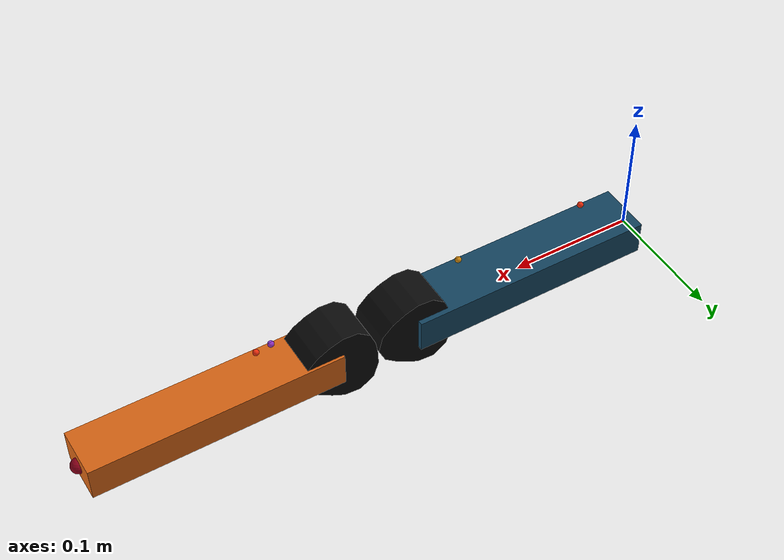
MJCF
<mujoco model="cable_demo_surface_route_convex_mesh_rolling_joint">
  <compiler autolimits="true" angle="radian" alignfree="false" />
  <size nuser_site="1" />
  <option timestep="0.001" gravity="0 0 0" integrator="implicit" />

  <extension>
    <plugin plugin="mujoco.cable.unilateral">
      <instance name="mesh_upper_drive_cable">
        <config key="stiffness" value="1200" />
        <config key="damping" value="18" />
        <config key="slack" value="0.0002" />
        <config key="home_length" value="auto_initial" />
        <config key="pretension_offset" value="0.0012" />
        <config key="max_tension" value="100" />
        <config key="ctrl_mode" value="target_contraction" />
        <config key="route_mode" value="surface" />
        <config key="route_tendon" value="mesh_upper_drive_seed" />
        <config key="wrap_geoms" value="proximal_mesh_proxy distal_mesh_proxy" />
      </instance>
      <instance name="mesh_lower_drive_cable">
        <config key="stiffness" value="1200" />
        <config key="damping" value="18" />
        <config key="slack" value="0.0002" />
        <config key="home_length" value="auto_initial" />
        <config key="pretension_offset" value="0.0012" />
        <config key="max_tension" value="100" />
        <config key="ctrl_mode" value="target_contraction" />
        <config key="route_mode" value="surface" />
        <config key="route_tendon" value="mesh_lower_drive_seed" />
        <config key="wrap_geoms" value="proximal_mesh_proxy distal_mesh_proxy" />
      </instance>
      <instance name="mesh_upper_strap_cable">
        <config key="stiffness" value="18000" />
        <config key="damping" value="500" />
        <config key="home_length" value="auto_initial" />
        <config key="pretension_offset" value="0.00010" />
        <config key="max_tension" value="80" />
        <config key="route_mode" value="surface" />
        <config key="route_tendon" value="mesh_upper_strap_seed" />
        <config key="wrap_geoms" value="proximal_mesh_proxy distal_mesh_proxy" />
      </instance>
      <instance name="mesh_lower_strap_cable">
        <config key="stiffness" value="18000" />
        <config key="damping" value="500" />
        <config key="home_length" value="auto_initial" />
        <config key="pretension_offset" value="0.00010" />
        <config key="max_tension" value="80" />
        <config key="route_mode" value="surface" />
        <config key="route_tendon" value="mesh_lower_strap_seed" />
        <config key="wrap_geoms" value="proximal_mesh_proxy distal_mesh_proxy" />
      </instance>
    </plugin>
  </extension>

  <asset>
    <material name="mesh_proximal_material" rgba="0.08 0.27 0.38 1" />
    <material name="mesh_distal_material" rgba="0.84 0.39 0.08 1" />
    <material name="mesh_contact_material" rgba="0.04 0.04 0.04 1" />
    <mesh name="irregular_proxy_mesh"
          vertex="0.0327000 -0.2000000 0.0000000 0.0209239 -0.2000000 0.0209239 0.0000000 -0.2000000 0.0300000 -0.0215025 -0.2000000 0.0215025 -0.0273000 -0.2000000 0.0000000 -0.0236239 -0.2000000 -0.0236239 -0.0000000 -0.2000000 -0.0300000 0.0188025 -0.2000000 -0.0188025 0.0327000 -0.0050000 0.0000000 0.0209239 -0.0050000 0.0209239 0.0000000 -0.0050000 0.0300000 -0.0215025 -0.0050000 0.0215025 -0.0273000 -0.0050000 0.0000000 -0.0236239 -0.0050000 -0.0236239 -0.0000000 -0.0050000 -0.0300000 0.0188025 -0.0050000 -0.0188025 0.0327000 0.0050000 0.0000000 0.0209239 0.0050000 0.0209239 0.0000000 0.0050000 0.0300000 -0.0215025 0.0050000 0.0215025 -0.0273000 0.0050000 0.0000000 -0.0236239 0.0050000 -0.0236239 -0.0000000 0.0050000 -0.0300000 0.0188025 0.0050000 -0.0188025 0.0327000 0.2000000 0.0000000 0.0209239 0.2000000 0.0209239 0.0000000 0.2000000 0.0300000 -0.0215025 0.2000000 0.0215025 -0.0273000 0.2000000 0.0000000 -0.0236239 0.2000000 -0.0236239 -0.0000000 0.2000000 -0.0300000 0.0188025 0.2000000 -0.0188025"
          face="0 2 1 24 25 26 0 3 2 24 26 27 0 4 3 24 27 28 0 5 4 24 28 29 0 6 5 24 29 30 0 7 6 24 30 31 0 1 9 0 9 8 1 2 10 1 10 9 2 3 11 2 11 10 3 4 12 3 12 11 4 5 13 4 13 12 5 6 14 5 14 13 6 7 15 6 15 14 7 0 8 7 8 15 8 9 17 8 17 16 9 10 18 9 18 17 10 11 19 10 19 18 11 12 20 11 20 19 12 13 21 12 21 20 13 14 22 13 22 21 14 15 23 14 23 22 15 8 16 15 16 23 16 17 25 16 25 24 17 18 26 17 26 25 18 19 27 18 27 26 19 20 28 19 28 27 20 21 29 20 29 28 21 22 30 21 30 29 22 23 31 22 31 30 23 16 24 23 24 31" />
    <mesh name="irregular_visual_mesh"
          vertex="0.0337900 -0.0180000 0.0000000 0.0306393 -0.0180000 0.0126912 0.0216213 -0.0180000 0.0216213 0.0112962 -0.0180000 0.0272714 0.0000000 -0.0180000 0.0310000 -0.0124302 -0.0180000 0.0300091 -0.0222193 -0.0180000 0.0222193 -0.0266413 -0.0180000 0.0110352 -0.0282100 -0.0180000 0.0000000 -0.0286664 -0.0180000 -0.0118740 -0.0244113 -0.0180000 -0.0244113 -0.0132690 -0.0180000 -0.0320343 -0.0000000 -0.0180000 -0.0310000 0.0104573 -0.0180000 -0.0252463 0.0194293 -0.0180000 -0.0194293 0.0286141 -0.0180000 -0.0118523 0.0337900 0.0180000 0.0000000 0.0306393 0.0180000 0.0126912 0.0216213 0.0180000 0.0216213 0.0112962 0.0180000 0.0272714 0.0000000 0.0180000 0.0310000 -0.0124302 0.0180000 0.0300091 -0.0222193 0.0180000 0.0222193 -0.0266413 0.0180000 0.0110352 -0.0282100 0.0180000 0.0000000 -0.0286664 0.0180000 -0.0118740 -0.0244113 0.0180000 -0.0244113 -0.0132690 0.0180000 -0.0320343 -0.0000000 0.0180000 -0.0310000 0.0104573 0.0180000 -0.0252463 0.0194293 0.0180000 -0.0194293 0.0286141 0.0180000 -0.0118523"
          face="0 2 1 16 17 18 0 3 2 16 18 19 0 4 3 16 19 20 0 5 4 16 20 21 0 6 5 16 21 22 0 7 6 16 22 23 0 8 7 16 23 24 0 9 8 16 24 25 0 10 9 16 25 26 0 11 10 16 26 27 0 12 11 16 27 28 0 13 12 16 28 29 0 14 13 16 29 30 0 15 14 16 30 31 0 1 17 0 17 16 1 2 18 1 18 17 2 3 19 2 19 18 3 4 20 3 20 19 4 5 21 4 21 20 5 6 22 5 22 21 6 7 23 6 23 22 7 8 24 7 24 23 8 9 25 8 25 24 9 10 26 9 26 25 10 11 27 10 27 26 11 12 28 11 28 27 12 13 29 12 29 28 13 14 30 13 30 29 14 15 31 14 31 30 15 0 16 15 16 31" />
  </asset>

  <default>
    <geom friction="1.5 0.08 0.02" solref="0.003 1" solimp="0.96 0.995 0.001" />
    <site size="0.0025" />
    <default class="mesh_route_hint">
      <site size="0.0002" rgba="0 0 0 0" user="2" />
    </default>
    <default class="mesh_route_proxy">
      <geom type="mesh" mesh="irregular_proxy_mesh" density="0"
            contype="0" conaffinity="0" rgba="0 0 0 0" />
    </default>
  </default>

  <worldbody>
    <light name="key" pos="0.16 -0.65 0.45" dir="0 1 -0.5" />
    <camera name="overview" pos="0.16 -0.50 0.18"
            xyaxes="1 0 0 0 0.34 0.94" />

    <body name="mesh_proximal_link">
      <geom name="mesh_proximal_body" type="box" pos="0.10 0 0"
            size="0.10 0.022 0.014" material="mesh_proximal_material"
            density="2500" contype="0" conaffinity="0" />
      <geom name="proximal_visual_mesh" type="mesh" mesh="irregular_visual_mesh"
            pos="0.20 0 0" material="mesh_contact_material" density="2500" />
      <geom name="proximal_mesh_proxy" class="mesh_route_proxy" pos="0.20 0 0" />
      <site name="mesh_prox_anchor_upper" pos="0.045 0 0.040" user="1"
            rgba="0.94 0.18 0.05 0.9" />
      <site name="mesh_prox_anchor_lower" pos="0.045 0 -0.040" user="1"
            rgba="0.08 0.34 0.95 0.9" />
      <site name="mesh_prox_strap_upper" pos="0.155 0 0.039" user="1"
            rgba="1 0.62 0.02 0.85" />
      <site name="mesh_prox_strap_lower" pos="0.155 0 -0.039" user="1"
            rgba="0.58 0.20 0.95 0.85" />
      <site name="mesh_prox_hint_upper" class="mesh_route_hint" pos="0.20 0 0.037" />
      <site name="mesh_prox_hint_lower" class="mesh_route_hint" pos="0.20 0 -0.037" />
    </body>

    <body name="mesh_distal_link" pos="0.263 0 0">
      <joint name="mesh_distal_free" type="free" damping="0.35" />
      <geom name="distal_visual_mesh" type="mesh" mesh="irregular_visual_mesh"
            material="mesh_contact_material" mass="0.035" />
      <geom name="distal_mesh_proxy" class="mesh_route_proxy" />
      <geom name="mesh_distal_body" type="box" pos="0.10 0 0"
            size="0.10 0.020 0.014" material="mesh_distal_material"
            density="1800" contype="0" conaffinity="0" />
      <site name="mesh_dist_anchor_upper" pos="0.060 0 0.035" user="1"
            rgba="0.94 0.18 0.05 0.9" />
      <site name="mesh_dist_anchor_lower" pos="0.060 0 -0.035" user="1"
            rgba="0.08 0.34 0.95 0.9" />
      <site name="mesh_dist_strap_upper" pos="0.048 0 0.037" user="1"
            rgba="0.58 0.20 0.95 0.85" />
      <site name="mesh_dist_strap_lower" pos="0.048 0 -0.037" user="1"
            rgba="1 0.62 0.02 0.85" />
      <site name="mesh_dist_hint_upper" class="mesh_route_hint" pos="0 0 0.037" />
      <site name="mesh_dist_hint_lower" class="mesh_route_hint" pos="0 0 -0.037" />
      <site name="mesh_tip" pos="0.20 0 0" size="0.006" rgba="0.55 0 0.1 1" />
    </body>
  </worldbody>

  <tendon>
    <spatial name="mesh_upper_strap_seed" width="0.000000001" rgba="1 0.62 0.02 1">
      <site site="mesh_prox_strap_upper" />
      <site site="mesh_prox_hint_upper" />
      <site site="mesh_dist_hint_lower" />
      <site site="mesh_dist_strap_lower" />
    </spatial>
    <spatial name="mesh_lower_strap_seed" width="0.000000001" rgba="0.58 0.20 0.95 1">
      <site site="mesh_prox_strap_lower" />
      <site site="mesh_prox_hint_lower" />
      <site site="mesh_dist_hint_upper" />
      <site site="mesh_dist_strap_upper" />
    </spatial>
    <spatial name="mesh_upper_drive_seed" width="0.000000001" rgba="0.94 0.18 0.05 1">
      <site site="mesh_prox_anchor_upper" />
      <site site="mesh_prox_hint_upper" />
      <site site="mesh_dist_hint_lower" />
      <site site="mesh_dist_anchor_lower" />
    </spatial>
    <spatial name="mesh_lower_drive_seed" width="0.000000001" rgba="0.08 0.34 0.95 1">
      <site site="mesh_prox_anchor_lower" />
      <site site="mesh_prox_hint_lower" />
      <site site="mesh_dist_hint_upper" />
      <site site="mesh_dist_anchor_upper" />
    </spatial>
  </tendon>

  <actuator>
    <plugin name="mesh_upper_drive" tendon="mesh_upper_drive_seed" gear="0"
            instance="mesh_upper_drive_cable" ctrllimited="true" ctrlrange="-0.004 0.040" />
    <plugin name="mesh_lower_drive" tendon="mesh_lower_drive_seed" gear="0"
            instance="mesh_lower_drive_cable" ctrllimited="true" ctrlrange="-0.004 0.040" />
  </actuator>

  <sensor>
    <plugin name="mesh_upper_drive_state" instance="mesh_upper_drive_cable" />
    <plugin name="mesh_lower_drive_state" instance="mesh_lower_drive_cable" />
    <plugin name="mesh_upper_strap_state" instance="mesh_upper_strap_cable" />
    <plugin name="mesh_lower_strap_state" instance="mesh_lower_strap_cable" />
    <framepos name="mesh_distal_position" objtype="body" objname="mesh_distal_link" />
    <framequat name="mesh_distal_orientation" objtype="body" objname="mesh_distal_link" />
  </sensor>
</mujoco>
